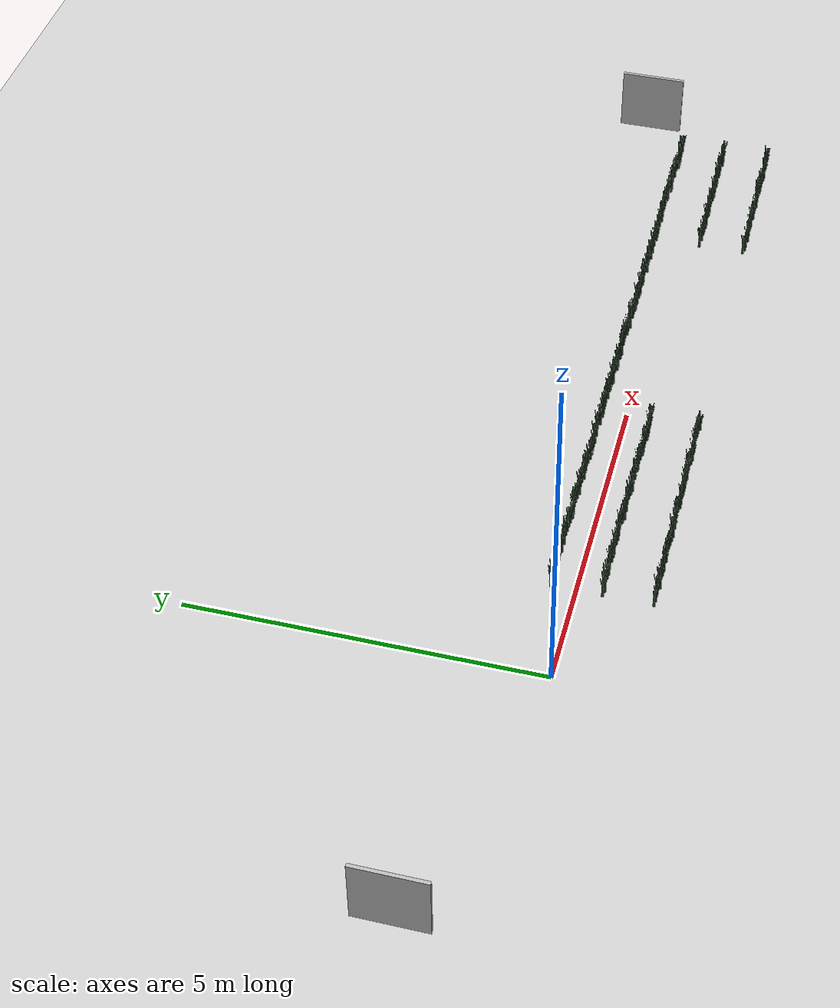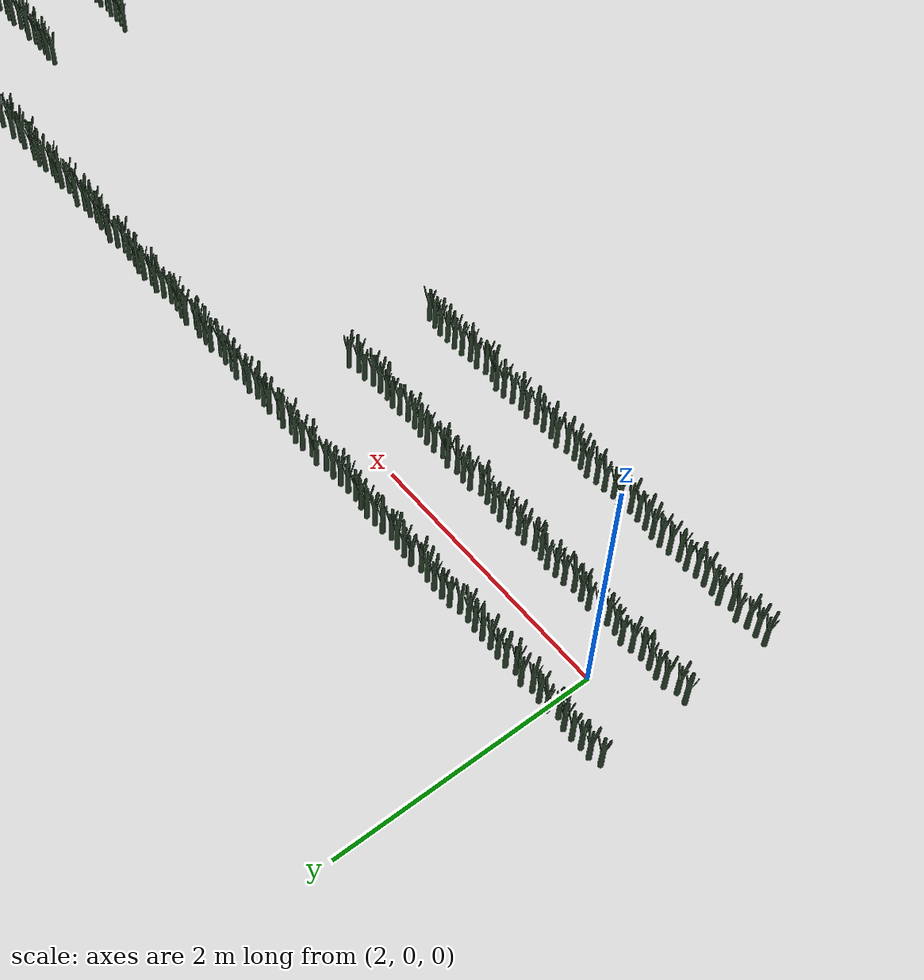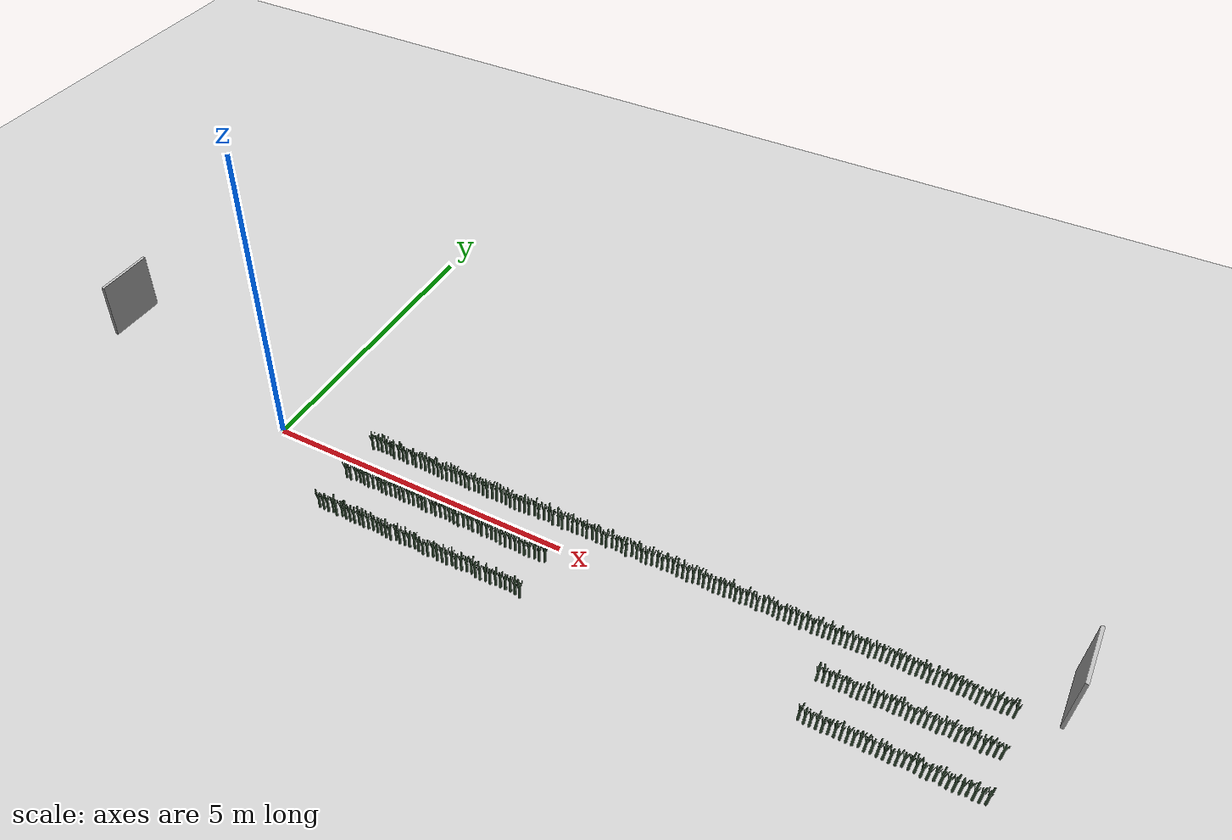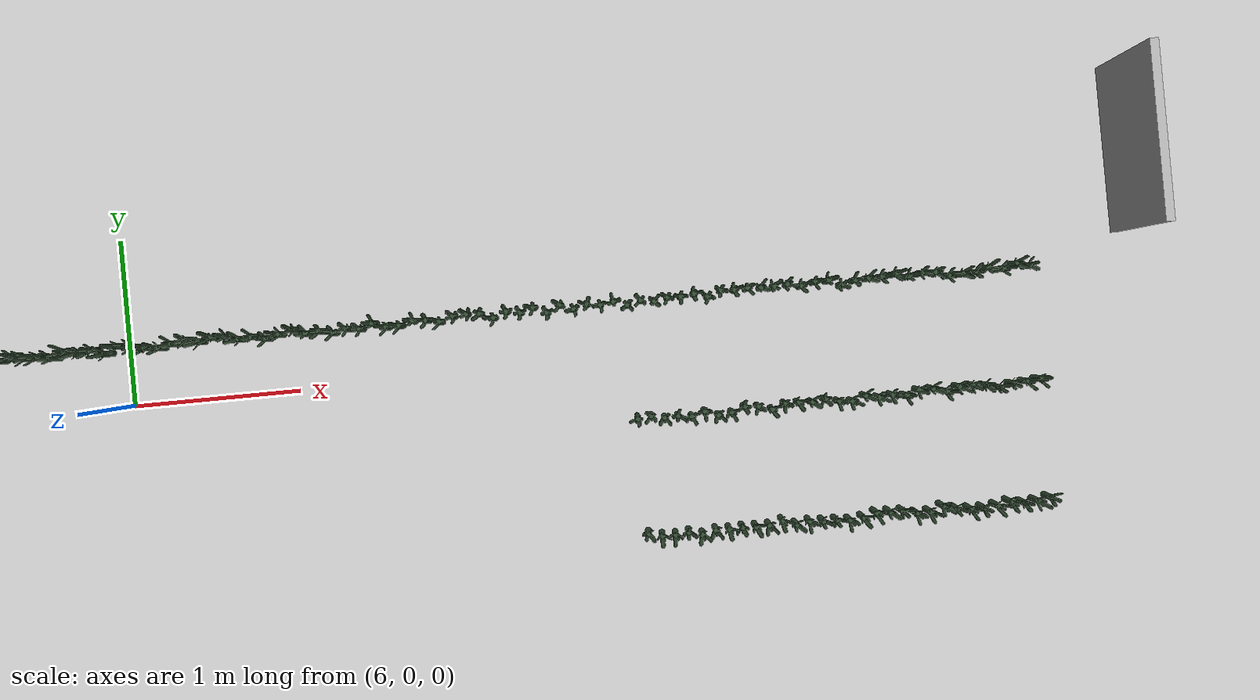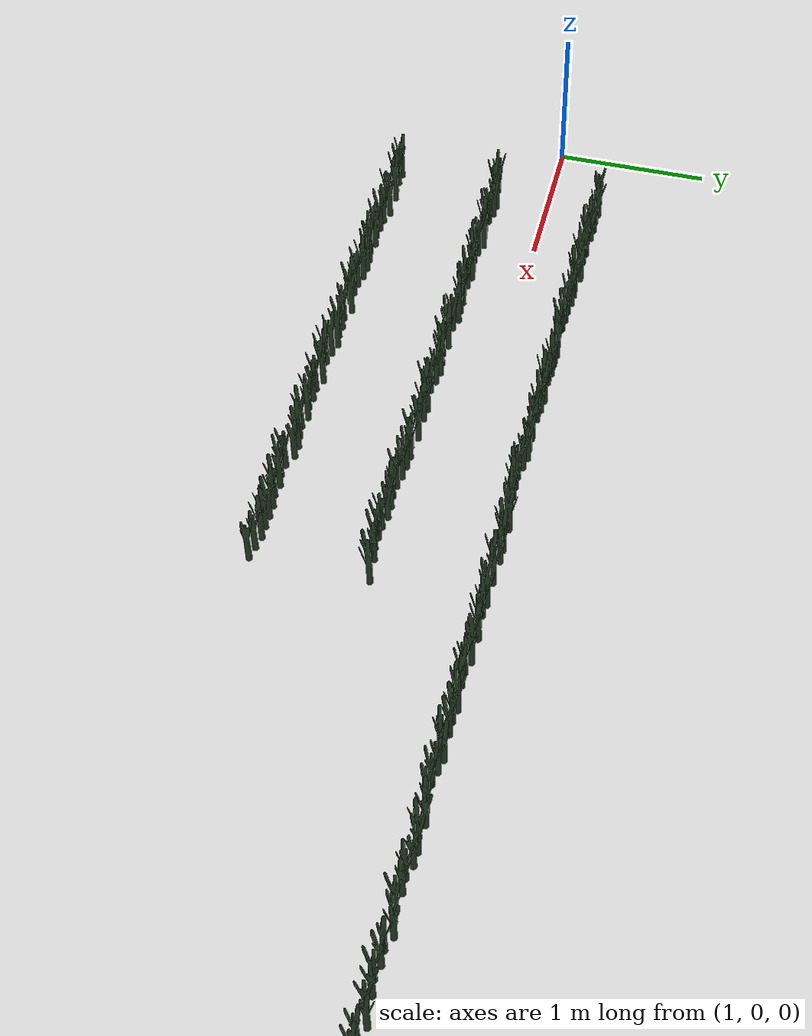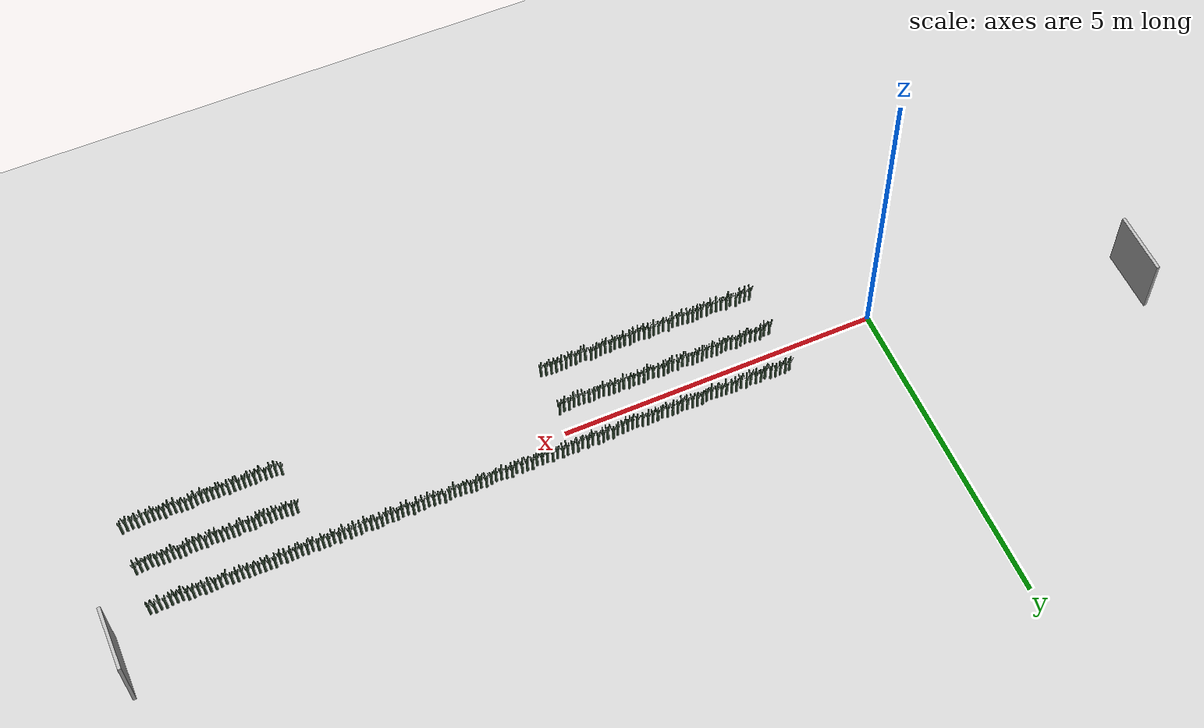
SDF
<sdf version="1.6">
 <world name="default">
  <light name="sun" type="directional">
   <pose>0 0 10 0 -0 0</pose>
   <diffuse>0.5 0.5 0.5 1</diffuse>
   <specular>0.1 0.1 0.1 1</specular>
   <attenuation>
    <range>1000</range>
    <constant>0.9</constant>
    <linear>0.01</linear>
    <quadratic>0.001</quadratic>
   </attenuation>
   <direction>0.9 0.5 -1</direction>
  </light>
  <scene><background>130 200 255 1</background><ambient>130 140 140 1</ambient></scene>
  <include><uri>model://Sign</uri><pose>12 1 0 0 0 0</pose><static>1</static></include>
  <include><uri>model://Sign</uri><pose>-4 1 0 0 0 0</pose><static>1</static></include>
  <include><uri>model://dirt_plane</uri></include>
  <include><uri>model://Leek</uri><pose>1.500000 0.341701 0.15 0 0 -74.691320</pose><static>0</static></include>
  <include><uri>model://Leek</uri><pose>1.580000 0.365852 0.15 0 0 142.672357</pose><static>0</static></include>
  <include><uri>model://Leek</uri><pose>1.660000 0.359936 0.15 0 0 89.421841</pose><static>0</static></include>
  <include><uri>model://Leek</uri><pose>1.740000 0.365455 0.15 0 0 139.092558</pose><static>0</static></include>
  <include><uri>model://Leek</uri><pose>1.820000 0.360886 0.15 0 0 97.974981</pose><static>0</static></include>
  <include>
   <uri>model://Leek</uri>
   <pose>1.900000 0.332071 0.15 0 0 -161.359726</pose>
   <static>0</static>
  </include>
  <include><uri>model://Leek</uri><pose>1.980000 0.359069 0.15 0 0 81.617965</pose><static>0</static></include>
  <include><uri>model://Leek</uri><pose>2.060000 0.353085 0.15 0 0 27.767258</pose><static>0</static></include>
  <include><uri>model://Leek</uri><pose>2.140000 0.339208 0.15 0 0 -97.128318</pose><static>0</static></include>
  <include><uri>model://Leek</uri><pose>2.220000 0.367946 0.15 0 0 161.510518</pose><static>0</static></include>
  <include>
   <uri>model://Leek</uri>
   <pose>2.300000 0.337844 0.15 0 0 -109.403814</pose>
   <static>0</static>
  </include>
  <include><uri>model://Leek</uri><pose>2.380000 0.357543 0.15 0 0 67.890761</pose><static>0</static></include>
  <include><uri>model://Leek</uri><pose>2.460000 0.355726 0.15 0 0 51.538201</pose><static>0</static></include>
  <include><uri>model://Leek</uri><pose>2.540000 0.346333 0.15 0 0 -33.004479</pose><static>0</static></include>
  <include><uri>model://Leek</uri><pose>2.620000 0.348541 0.15 0 0 -13.132439</pose><static>0</static></include>
  <include><uri>model://Leek</uri><pose>2.700000 0.343968 0.15 0 0 -54.283794</pose><static>0</static></include>
  <include>
   <uri>model://Leek</uri>
   <pose>2.780000 0.332337 0.15 0 0 -158.970257</pose>
   <static>0</static>
  </include>
  <include>
   <uri>model://Leek</uri>
   <pose>2.860000 0.335371 0.15 0 0 -131.665470</pose>
   <static>0</static>
  </include>
  <include><uri>model://Leek</uri><pose>2.940000 0.357737 0.15 0 0 69.630370</pose><static>0</static></include>
  <include><uri>model://Leek</uri><pose>3.020000 0.356378 0.15 0 0 57.405529</pose><static>0</static></include>
  <include><uri>model://Leek</uri><pose>3.100000 0.357374 0.15 0 0 66.368719</pose><static>0</static></include>
  <include><uri>model://Leek</uri><pose>3.180000 0.349831 0.15 0 0 -1.517087</pose><static>0</static></include>
  <include>
   <uri>model://Leek</uri>
   <pose>3.260000 0.335701 0.15 0 0 -128.690950</pose>
   <static>0</static>
  </include>
  <include><uri>model://Leek</uri><pose>3.340000 0.359238 0.15 0 0 83.145687</pose><static>0</static></include>
  <include><uri>model://Leek</uri><pose>3.420000 0.353951 0.15 0 0 35.558141</pose><static>0</static></include>
  <include><uri>model://Leek</uri><pose>3.500000 0.348466 0.15 0 0 -13.807327</pose><static>0</static></include>
  <include>
   <uri>model://Leek</uri>
   <pose>3.580000 0.333329 0.15 0 0 -150.037740</pose>
   <static>0</static>
  </include>
  <include><uri>model://Leek</uri><pose>3.660000 0.349231 0.15 0 0 -6.924394</pose><static>0</static></include>
  <include><uri>model://Leek</uri><pose>3.740000 0.350893 0.15 0 0 8.038224</pose><static>0</static></include>
  <include><uri>model://Leek</uri><pose>3.820000 0.358664 0.15 0 0 77.972068</pose><static>0</static></include>
  <include><uri>model://Leek</uri><pose>3.900000 0.345244 0.15 0 0 -42.804745</pose><static>0</static></include>
  <include>
   <uri>model://Leek</uri>
   <pose>3.980000 0.330557 0.15 0 0 -174.986444</pose>
   <static>0</static>
  </include>
  <include>
   <uri>model://Leek</uri>
   <pose>4.060000 0.332980 0.15 0 0 -153.175778</pose>
   <static>0</static>
  </include>
  <include>
   <uri>model://Leek</uri>
   <pose>4.140000 0.336419 0.15 0 0 -122.226580</pose>
   <static>0</static>
  </include>
  <include><uri>model://Leek</uri><pose>4.220000 0.341119 0.15 0 0 -79.925838</pose><static>0</static></include>
  <include><uri>model://Leek</uri><pose>4.300000 0.339610 0.15 0 0 -93.512813</pose><static>0</static></include>
  <include><uri>model://Leek</uri><pose>4.380000 0.366017 0.15 0 0 144.149490</pose><static>0</static></include>
  <include><uri>model://Leek</uri><pose>4.460000 0.343423 0.15 0 0 -59.195740</pose><static>0</static></include>
  <include><uri>model://Leek</uri><pose>4.540000 0.364998 0.15 0 0 134.978887</pose><static>0</static></include>
  <include><uri>model://Leek</uri><pose>4.620000 0.367648 0.15 0 0 158.835557</pose><static>0</static></include>
  <include><uri>model://Leek</uri><pose>4.700000 0.341961 0.15 0 0 -72.352507</pose><static>0</static></include>
  <include><uri>model://Leek</uri><pose>4.780000 0.362099 0.15 0 0 108.893983</pose><static>0</static></include>
  <include>
   <uri>model://Leek</uri>
   <pose>4.860000 0.334732 0.15 0 0 -137.411778</pose>
   <static>0</static>
  </include>
  <include><uri>model://Leek</uri><pose>4.940000 0.363119 0.15 0 0 118.067043</pose><static>0</static></include>
  <include><uri>model://Leek</uri><pose>5.020000 0.353683 0.15 0 0 33.143120</pose><static>0</static></include>
  <include><uri>model://Leek</uri><pose>5.100000 0.349874 0.15 0 0 -1.137750</pose><static>0</static></include>
  <include><uri>model://Leek</uri><pose>5.180000 0.367805 0.15 0 0 160.248814</pose><static>0</static></include>
  <include><uri>model://Leek</uri><pose>5.260000 0.346548 0.15 0 0 -31.065183</pose><static>0</static></include>
  <include><uri>model://Leek</uri><pose>5.340000 0.368612 0.15 0 0 167.503909</pose><static>0</static></include>
  <include><uri>model://Leek</uri><pose>5.420000 0.345981 0.15 0 0 -36.167177</pose><static>0</static></include>
  <include><uri>model://Leek</uri><pose>5.500000 0.351014 0.15 0 0 9.126842</pose><static>0</static></include>
  <include>
   <uri>model://Leek</uri>
   <pose>5.580000 0.333231 0.15 0 0 -150.922011</pose>
   <static>0</static>
  </include>
  <include><uri>model://Leek</uri><pose>5.660000 0.366975 0.15 0 0 152.779346</pose><static>0</static></include>
  <include><uri>model://Leek</uri><pose>5.740000 0.356005 0.15 0 0 54.048158</pose><static>0</static></include>
  <include><uri>model://Leek</uri><pose>5.820000 0.358842 0.15 0 0 79.575840</pose><static>0</static></include>
  <include>
   <uri>model://Leek</uri>
   <pose>5.900000 0.330654 0.15 0 0 -174.115253</pose>
   <static>0</static>
  </include>
  <include><uri>model://Leek</uri><pose>5.980000 0.369181 0.15 0 0 172.627328</pose><static>0</static></include>
  <include><uri>model://Leek</uri><pose>6.060000 0.355728 0.15 0 0 51.553734</pose><static>0</static></include>
  <include><uri>model://Leek</uri><pose>6.140000 0.341896 0.15 0 0 -72.934454</pose><static>0</static></include>
  <include>
   <uri>model://Leek</uri>
   <pose>6.220000 0.335429 0.15 0 0 -131.137921</pose>
   <static>0</static>
  </include>
  <include><uri>model://Leek</uri><pose>6.300000 0.352810 0.15 0 0 25.288137</pose><static>0</static></include>
  <include><uri>model://Leek</uri><pose>6.380000 0.368710 0.15 0 0 168.390964</pose><static>0</static></include>
  <include><uri>model://Leek</uri><pose>6.460000 0.350398 0.15 0 0 3.578119</pose><static>0</static></include>
  <include><uri>model://Leek</uri><pose>6.540000 0.369812 0.15 0 0 178.305823</pose><static>0</static></include>
  <include><uri>model://Leek</uri><pose>6.620000 0.366697 0.15 0 0 150.271853</pose><static>0</static></include>
  <include><uri>model://Leek</uri><pose>6.700000 0.344625 0.15 0 0 -48.376852</pose><static>0</static></include>
  <include><uri>model://Leek</uri><pose>6.780000 0.349322 0.15 0 0 -6.097645</pose><static>0</static></include>
  <include>
   <uri>model://Leek</uri>
   <pose>6.860000 0.332366 0.15 0 0 -158.708917</pose>
   <static>0</static>
  </include>
  <include><uri>model://Leek</uri><pose>6.940000 0.349420 0.15 0 0 -5.220628</pose><static>0</static></include>
  <include><uri>model://Leek</uri><pose>7.020000 0.369442 0.15 0 0 174.981184</pose><static>0</static></include>
  <include><uri>model://Leek</uri><pose>7.100000 0.340917 0.15 0 0 -81.747561</pose><static>0</static></include>
  <include><uri>model://Leek</uri><pose>7.180000 0.346993 0.15 0 0 -27.067328</pose><static>0</static></include>
  <include>
   <uri>model://Leek</uri>
   <pose>7.260000 0.330960 0.15 0 0 -171.355505</pose>
   <static>0</static>
  </include>
  <include><uri>model://Leek</uri><pose>7.340000 0.345671 0.15 0 0 -38.959303</pose><static>0</static></include>
  <include>
   <uri>model://Leek</uri>
   <pose>7.420000 0.337294 0.15 0 0 -114.350345</pose>
   <static>0</static>
  </include>
  <include><uri>model://Leek</uri><pose>7.500000 0.364636 0.15 0 0 131.722241</pose><static>0</static></include>
  <include>
   <uri>model://Leek</uri>
   <pose>7.580000 0.334264 0.15 0 0 -141.626744</pose>
   <static>0</static>
  </include>
  <include>
   <uri>model://Leek</uri>
   <pose>7.660000 0.335656 0.15 0 0 -129.097008</pose>
   <static>0</static>
  </include>
  <include><uri>model://Leek</uri><pose>7.740000 0.356242 0.15 0 0 56.178514</pose><static>0</static></include>
  <include><uri>model://Leek</uri><pose>7.820000 0.351903 0.15 0 0 17.128577</pose><static>0</static></include>
  <include>
   <uri>model://Leek</uri>
   <pose>7.900000 0.336336 0.15 0 0 -122.979396</pose>
   <static>0</static>
  </include>
  <include><uri>model://Leek</uri><pose>7.980000 0.359644 0.15 0 0 86.793557</pose><static>0</static></include>
  <include><uri>model://Leek</uri><pose>8.060000 0.365950 0.15 0 0 143.545505</pose><static>0</static></include>
  <include><uri>model://Leek</uri><pose>8.140000 0.360219 0.15 0 0 91.974477</pose><static>0</static></include>
  <include>
   <uri>model://Leek</uri>
   <pose>8.220000 0.330094 0.15 0 0 -179.157608</pose>
   <static>0</static>
  </include>
  <include><uri>model://Leek</uri><pose>8.300000 0.360308 0.15 0 0 92.776195</pose><static>0</static></include>
  <include><uri>model://Leek</uri><pose>8.380000 0.344957 0.15 0 0 -45.391489</pose><static>0</static></include>
  <include><uri>model://Leek</uri><pose>8.460000 0.369169 0.15 0 0 172.517680</pose><static>0</static></include>
  <include>
   <uri>model://Leek</uri>
   <pose>8.540000 0.330301 0.15 0 0 -177.291713</pose>
   <static>0</static>
  </include>
  <include><uri>model://Leek</uri><pose>8.620000 0.369129 0.15 0 0 172.163208</pose><static>0</static></include>
  <include>
   <uri>model://Leek</uri>
   <pose>8.700000 0.337813 0.15 0 0 -109.680720</pose>
   <static>0</static>
  </include>
  <include><uri>model://Leek</uri><pose>8.780000 0.358499 0.15 0 0 76.493964</pose><static>0</static></include>
  <include><uri>model://Leek</uri><pose>8.860000 0.346873 0.15 0 0 -28.142175</pose><static>0</static></include>
  <include><uri>model://Leek</uri><pose>8.940000 0.359092 0.15 0 0 81.831799</pose><static>0</static></include>
  <include>
   <uri>model://Leek</uri>
   <pose>9.020000 0.330873 0.15 0 0 -172.144826</pose>
   <static>0</static>
  </include>
  <include><uri>model://Leek</uri><pose>9.100000 0.352347 0.15 0 0 21.120960</pose><static>0</static></include>
  <include>
   <uri>model://Leek</uri>
   <pose>9.180000 0.338038 0.15 0 0 -107.657377</pose>
   <static>0</static>
  </include>
  <include><uri>model://Leek</uri><pose>9.260000 0.354479 0.15 0 0 40.314486</pose><static>0</static></include>
  <include><uri>model://Leek</uri><pose>9.340000 0.352422 0.15 0 0 21.800938</pose><static>0</static></include>
  <include><uri>model://Leek</uri><pose>9.420000 0.362396 0.15 0 0 111.560390</pose><static>0</static></include>
  <include>
   <uri>model://Leek</uri>
   <pose>9.500000 0.337029 0.15 0 0 -116.738948</pose>
   <static>0</static>
  </include>
  <include><uri>model://Leek</uri><pose>9.580000 0.368451 0.15 0 0 166.055541</pose><static>0</static></include>
  <include><uri>model://Leek</uri><pose>9.660000 0.363808 0.15 0 0 124.272305</pose><static>0</static></include>
  <include><uri>model://Leek</uri><pose>9.740000 0.365053 0.15 0 0 135.473554</pose><static>0</static></include>
  <include><uri>model://Leek</uri><pose>9.820000 0.361112 0.15 0 0 100.005333</pose><static>0</static></include>
  <include><uri>model://Leek</uri><pose>9.900000 0.360552 0.15 0 0 94.965752</pose><static>0</static></include>
  <include><uri>model://Leek</uri><pose>9.980000 0.366520 0.15 0 0 148.682338</pose><static>0</static></include>
  <include><uri>model://Leek</uri><pose>10.060000 0.349155 0.15 0 0 -7.604056</pose><static>0</static></include>
  <include>
   <uri>model://Leek</uri>
   <pose>10.140000 0.365706 0.15 0 0 141.356253</pose>
   <static>0</static>
  </include>
  <include>
   <uri>model://Leek</uri>
   <pose>10.220000 0.366092 0.15 0 0 144.824814</pose>
   <static>0</static>
  </include>
  <include>
   <uri>model://Leek</uri>
   <pose>10.300000 0.332110 0.15 0 0 -161.014247</pose>
   <static>0</static>
  </include>
  <include><uri>model://Leek</uri><pose>10.380000 0.352284 0.15 0 0 20.559559</pose><static>0</static></include>
  <include><uri>model://Leek</uri><pose>10.460000 0.356916 0.15 0 0 62.244263</pose><static>0</static></include>
  <include><uri>model://Leek</uri><pose>10.540000 0.359604 0.15 0 0 86.431980</pose><static>0</static></include>
  <include>
   <uri>model://Leek</uri>
   <pose>10.620000 0.367312 0.15 0 0 155.812489</pose>
   <static>0</static>
  </include>
  <include>
   <uri>model://Leek</uri>
   <pose>10.700000 0.345144 0.15 0 0 -43.702859</pose>
   <static>0</static>
  </include>
  <include><uri>model://Leek</uri><pose>10.780000 0.358134 0.15 0 0 73.206806</pose><static>0</static></include>
  <include><uri>model://Leek</uri><pose>10.860000 0.355292 0.15 0 0 47.631673</pose><static>0</static></include>
  <include>
   <uri>model://Leek</uri>
   <pose>10.940000 0.330246 0.15 0 0 -177.783495</pose>
   <static>0</static>
  </include>
  <include>
   <uri>model://Leek</uri>
   <pose>11.020000 0.332455 0.15 0 0 -157.908232</pose>
   <static>0</static>
  </include>
  <include>
   <uri>model://Leek</uri>
   <pose>11.100000 0.334113 0.15 0 0 -142.983933</pose>
   <static>0</static>
  </include>
  <include><uri>model://Leek</uri><pose>11.180000 0.355001 0.15 0 0 45.011914</pose><static>0</static></include>
  <include>
   <uri>model://Leek</uri>
   <pose>11.260000 0.340743 0.15 0 0 -83.317378</pose>
   <static>0</static>
  </include>
  <include>
   <uri>model://Leek</uri>
   <pose>11.340000 0.363168 0.15 0 0 118.514872</pose>
   <static>0</static>
  </include>
  <include>
   <uri>model://Leek</uri>
   <pose>11.420000 0.346031 0.15 0 0 -35.720373</pose>
   <static>0</static>
  </include>
  <include>
   <uri>model://Leek</uri>
   <pose>1.500000 -0.358873 0.15 0 0 -79.860757</pose>
   <static>0</static>
  </include>
  <include>
   <uri>model://Leek</uri>
   <pose>1.580000 -0.368524 0.15 0 0 -166.719647</pose>
   <static>0</static>
  </include>
  <include>
   <uri>model://Leek</uri>
   <pose>1.660000 -0.331540 0.15 0 0 166.138412</pose>
   <static>0</static>
  </include>
  <include>
   <uri>model://Leek</uri>
   <pose>1.740000 -0.338027 0.15 0 0 107.753911</pose>
   <static>0</static>
  </include>
  <include>
   <uri>model://Leek</uri>
   <pose>1.820000 -0.352163 0.15 0 0 -19.465429</pose>
   <static>0</static>
  </include>
  <include>
   <uri>model://Leek</uri>
   <pose>1.900000 -0.359518 0.15 0 0 -85.662184</pose>
   <static>0</static>
  </include>
  <include><uri>model://Leek</uri><pose>1.980000 -0.347546 0.15 0 0 22.084955</pose><static>0</static></include>
  <include>
   <uri>model://Leek</uri>
   <pose>2.060000 -0.330420 0.15 0 0 176.223484</pose>
   <static>0</static>
  </include>
  <include>
   <uri>model://Leek</uri>
   <pose>2.140000 -0.352730 0.15 0 0 -24.568966</pose>
   <static>0</static>
  </include>
  <include>
   <uri>model://Leek</uri>
   <pose>2.220000 -0.360256 0.15 0 0 -92.305542</pose>
   <static>0</static>
  </include>
  <include><uri>model://Leek</uri><pose>2.300000 -0.348194 0.15 0 0 16.255346</pose><static>0</static></include>
  <include>
   <uri>model://Leek</uri>
   <pose>2.380000 -0.338171 0.15 0 0 106.462052</pose>
   <static>0</static>
  </include>
  <include><uri>model://Leek</uri><pose>2.460000 -0.348139 0.15 0 0 16.750818</pose><static>0</static></include>
  <include>
   <uri>model://Leek</uri>
   <pose>2.540000 -0.357712 0.15 0 0 -69.406084</pose>
   <static>0</static>
  </include>
  <include><uri>model://Leek</uri><pose>2.620000 -0.339043 0.15 0 0 98.613813</pose><static>0</static></include>
  <include>
   <uri>model://Leek</uri>
   <pose>2.700000 -0.337724 0.15 0 0 110.480475</pose>
   <static>0</static>
  </include>
  <include>
   <uri>model://Leek</uri>
   <pose>2.780000 -0.331149 0.15 0 0 169.657323</pose>
   <static>0</static>
  </include>
  <include><uri>model://Leek</uri><pose>2.860000 -0.349409 0.15 0 0 5.317230</pose><static>0</static></include>
  <include>
   <uri>model://Leek</uri>
   <pose>2.940000 -0.366512 0.15 0 0 -148.607138</pose>
   <static>0</static>
  </include>
  <include><uri>model://Leek</uri><pose>3.020000 -0.339175 0.15 0 0 97.426004</pose><static>0</static></include>
  <include>
   <uri>model://Leek</uri>
   <pose>3.100000 -0.359254 0.15 0 0 -83.289983</pose>
   <static>0</static>
  </include>
  <include><uri>model://Leek</uri><pose>3.180000 -0.344687 0.15 0 0 47.813709</pose><static>0</static></include>
  <include>
   <uri>model://Leek</uri>
   <pose>3.260000 -0.332231 0.15 0 0 159.918390</pose>
   <static>0</static>
  </include>
  <include><uri>model://Leek</uri><pose>3.340000 -0.342182 0.15 0 0 70.357881</pose><static>0</static></include>
  <include>
   <uri>model://Leek</uri>
   <pose>3.420000 -0.357041 0.15 0 0 -63.371560</pose>
   <static>0</static>
  </include>
  <include>
   <uri>model://Leek</uri>
   <pose>3.500000 -0.367823 0.15 0 0 -160.410873</pose>
   <static>0</static>
  </include>
  <include>
   <uri>model://Leek</uri>
   <pose>3.580000 -0.336266 0.15 0 0 123.609387</pose>
   <static>0</static>
  </include>
  <include><uri>model://Leek</uri><pose>3.660000 -0.339868 0.15 0 0 91.187503</pose><static>0</static></include>
  <include>
   <uri>model://Leek</uri>
   <pose>3.740000 -0.354245 0.15 0 0 -38.203233</pose>
   <static>0</static>
  </include>
  <include>
   <uri>model://Leek</uri>
   <pose>3.820000 -0.332819 0.15 0 0 154.626026</pose>
   <static>0</static>
  </include>
  <include>
   <uri>model://Leek</uri>
   <pose>3.900000 -0.359958 0.15 0 0 -89.617552</pose>
   <static>0</static>
  </include>
  <include><uri>model://Leek</uri><pose>3.980000 -0.343015 0.15 0 0 62.867514</pose><static>0</static></include>
  <include><uri>model://Leek</uri><pose>4.060000 -0.344857 0.15 0 0 46.291032</pose><static>0</static></include>
  <include>
   <uri>model://Leek</uri>
   <pose>4.140000 -0.351147 0.15 0 0 -10.319240</pose>
   <static>0</static>
  </include>
  <include>
   <uri>model://Leek</uri>
   <pose>4.220000 -0.364838 0.15 0 0 -133.540974</pose>
   <static>0</static>
  </include>
  <include>
   <uri>model://Leek</uri>
   <pose>4.300000 -0.368127 0.15 0 0 -163.139424</pose>
   <static>0</static>
  </include>
  <include>
   <uri>model://Leek</uri>
   <pose>4.380000 -0.356887 0.15 0 0 -61.985877</pose>
   <static>0</static>
  </include>
  <include>
   <uri>model://Leek</uri>
   <pose>4.460000 -0.354797 0.15 0 0 -43.170838</pose>
   <static>0</static>
  </include>
  <include>
   <uri>model://Leek</uri>
   <pose>4.540000 -0.369659 0.15 0 0 -176.933122</pose>
   <static>0</static>
  </include>
  <include>
   <uri>model://Leek</uri>
   <pose>4.620000 -0.369029 0.15 0 0 -171.263664</pose>
   <static>0</static>
  </include>
  <include>
   <uri>model://Leek</uri>
   <pose>4.700000 -0.369057 0.15 0 0 -171.509045</pose>
   <static>0</static>
  </include>
  <include>
   <uri>model://Leek</uri>
   <pose>4.780000 -0.351391 0.15 0 0 -12.519129</pose>
   <static>0</static>
  </include>
  <include>
   <uri>model://Leek</uri>
   <pose>4.860000 -0.360017 0.15 0 0 -90.156071</pose>
   <static>0</static>
  </include>
  <include>
   <uri>model://Leek</uri>
   <pose>4.940000 -0.333561 0.15 0 0 147.948235</pose>
   <static>0</static>
  </include>
  <include><uri>model://Leek</uri><pose>9.020000 -0.347723 0.15 0 0 20.495159</pose><static>0</static></include>
  <include>
   <uri>model://Leek</uri>
   <pose>9.100000 -0.337882 0.15 0 0 109.064369</pose>
   <static>0</static>
  </include>
  <include>
   <uri>model://Leek</uri>
   <pose>9.180000 -0.355861 0.15 0 0 -52.752072</pose>
   <static>0</static>
  </include>
  <include>
   <uri>model://Leek</uri>
   <pose>9.260000 -0.352128 0.15 0 0 -19.153398</pose>
   <static>0</static>
  </include>
  <include>
   <uri>model://Leek</uri>
   <pose>9.340000 -0.361475 0.15 0 0 -103.271480</pose>
   <static>0</static>
  </include>
  <include><uri>model://Leek</uri><pose>9.420000 -0.340585 0.15 0 0 84.731971</pose><static>0</static></include>
  <include>
   <uri>model://Leek</uri>
   <pose>9.500000 -0.369808 0.15 0 0 -178.270480</pose>
   <static>0</static>
  </include>
  <include>
   <uri>model://Leek</uri>
   <pose>9.580000 -0.361487 0.15 0 0 -103.378898</pose>
   <static>0</static>
  </include>
  <include>
   <uri>model://Leek</uri>
   <pose>9.660000 -0.334458 0.15 0 0 139.882269</pose>
   <static>0</static>
  </include>
  <include><uri>model://Leek</uri><pose>9.740000 -0.340656 0.15 0 0 84.095029</pose><static>0</static></include>
  <include>
   <uri>model://Leek</uri>
   <pose>9.820000 -0.364790 0.15 0 0 -133.114418</pose>
   <static>0</static>
  </include>
  <include>
   <uri>model://Leek</uri>
   <pose>9.900000 -0.337835 0.15 0 0 109.485783</pose>
   <static>0</static>
  </include>
  <include><uri>model://Leek</uri><pose>9.980000 -0.338973 0.15 0 0 99.240968</pose><static>0</static></include>
  <include>
   <uri>model://Leek</uri>
   <pose>10.060000 -0.344490 0.15 0 0 49.586712</pose>
   <static>0</static>
  </include>
  <include>
   <uri>model://Leek</uri>
   <pose>10.140000 -0.334423 0.15 0 0 140.195206</pose>
   <static>0</static>
  </include>
  <include>
   <uri>model://Leek</uri>
   <pose>10.220000 -0.354569 0.15 0 0 -41.118712</pose>
   <static>0</static>
  </include>
  <include>
   <uri>model://Leek</uri>
   <pose>10.300000 -0.360703 0.15 0 0 -96.323314</pose>
   <static>0</static>
  </include>
  <include>
   <uri>model://Leek</uri>
   <pose>10.380000 -0.336090 0.15 0 0 125.191846</pose>
   <static>0</static>
  </include>
  <include>
   <uri>model://Leek</uri>
   <pose>10.460000 -0.352328 0.15 0 0 -20.956373</pose>
   <static>0</static>
  </include>
  <include>
   <uri>model://Leek</uri>
   <pose>10.540000 -0.346020 0.15 0 0 35.819869</pose>
   <static>0</static>
  </include>
  <include>
   <uri>model://Leek</uri>
   <pose>10.620000 -0.355943 0.15 0 0 -53.485934</pose>
   <static>0</static>
  </include>
  <include>
   <uri>model://Leek</uri>
   <pose>10.700000 -0.331564 0.15 0 0 165.923297</pose>
   <static>0</static>
  </include>
  <include>
   <uri>model://Leek</uri>
   <pose>10.780000 -0.330509 0.15 0 0 175.415325</pose>
   <static>0</static>
  </include>
  <include>
   <uri>model://Leek</uri>
   <pose>10.860000 -0.354372 0.15 0 0 -39.346389</pose>
   <static>0</static>
  </include>
  <include>
   <uri>model://Leek</uri>
   <pose>10.940000 -0.333493 0.15 0 0 148.562073</pose>
   <static>0</static>
  </include>
  <include>
   <uri>model://Leek</uri>
   <pose>11.020000 -0.332280 0.15 0 0 159.479613</pose>
   <static>0</static>
  </include>
  <include>
   <uri>model://Leek</uri>
   <pose>11.100000 -0.340009 0.15 0 0 89.917497</pose>
   <static>0</static>
  </include>
  <include>
   <uri>model://Leek</uri>
   <pose>11.180000 -0.361817 0.15 0 0 -106.349064</pose>
   <static>0</static>
  </include>
  <include>
   <uri>model://Leek</uri>
   <pose>11.260000 -0.342936 0.15 0 0 63.572688</pose>
   <static>0</static>
  </include>
  <include>
   <uri>model://Leek</uri>
   <pose>11.340000 -0.338457 0.15 0 0 103.883639</pose>
   <static>0</static>
  </include>
  <include>
   <uri>model://Leek</uri>
   <pose>11.420000 -0.330101 0.15 0 0 179.094892</pose>
   <static>0</static>
  </include>
  <include>
   <uri>model://Leek</uri>
   <pose>1.500000 -1.051753 0.15 0 0 -15.774018</pose>
   <static>0</static>
  </include>
  <include>
   <uri>model://Leek</uri>
   <pose>1.580000 -1.053694 0.15 0 0 -33.250079</pose>
   <static>0</static>
  </include>
  <include>
   <uri>model://Leek</uri>
   <pose>1.660000 -1.054556 0.15 0 0 -41.002093</pose>
   <static>0</static>
  </include>
  <include>
   <uri>model://Leek</uri>
   <pose>1.740000 -1.033959 0.15 0 0 144.373034</pose>
   <static>0</static>
  </include>
  <include>
   <uri>model://Leek</uri>
   <pose>1.820000 -1.069670 0.15 0 0 -177.026753</pose>
   <static>0</static>
  </include>
  <include>
   <uri>model://Leek</uri>
   <pose>1.900000 -1.032796 0.15 0 0 154.840036</pose>
   <static>0</static>
  </include>
  <include>
   <uri>model://Leek</uri>
   <pose>1.980000 -1.055539 0.15 0 0 -49.854259</pose>
   <static>0</static>
  </include>
  <include>
   <uri>model://Leek</uri>
   <pose>2.060000 -1.058586 0.15 0 0 -77.275720</pose>
   <static>0</static>
  </include>
  <include>
   <uri>model://Leek</uri>
   <pose>2.140000 -1.062719 0.15 0 0 -114.469466</pose>
   <static>0</static>
  </include>
  <include><uri>model://Leek</uri><pose>2.220000 -1.049222 0.15 0 0 7.000916</pose><static>0</static></include>
  <include>
   <uri>model://Leek</uri>
   <pose>2.300000 -1.062354 0.15 0 0 -111.183882</pose>
   <static>0</static>
  </include>
  <include><uri>model://Leek</uri><pose>2.380000 -1.046908 0.15 0 0 27.825061</pose><static>0</static></include>
  <include><uri>model://Leek</uri><pose>2.460000 -1.039934 0.15 0 0 90.591056</pose><static>0</static></include>
  <include><uri>model://Leek</uri><pose>2.540000 -1.043351 0.15 0 0 59.837348</pose><static>0</static></include>
  <include>
   <uri>model://Leek</uri>
   <pose>2.620000 -1.057846 0.15 0 0 -70.618083</pose>
   <static>0</static>
  </include>
  <include>
   <uri>model://Leek</uri>
   <pose>2.700000 -1.063229 0.15 0 0 -119.062118</pose>
   <static>0</static>
  </include>
  <include>
   <uri>model://Leek</uri>
   <pose>2.780000 -1.069743 0.15 0 0 -177.687165</pose>
   <static>0</static>
  </include>
  <include>
   <uri>model://Leek</uri>
   <pose>2.860000 -1.033305 0.15 0 0 150.257913</pose>
   <static>0</static>
  </include>
  <include>
   <uri>model://Leek</uri>
   <pose>2.940000 -1.063847 0.15 0 0 -124.624781</pose>
   <static>0</static>
  </include>
  <include>
   <uri>model://Leek</uri>
   <pose>3.020000 -1.052103 0.15 0 0 -18.928824</pose>
   <static>0</static>
  </include>
  <include><uri>model://Leek</uri><pose>3.100000 -1.050896 0.15 0 0 -8.067864</pose><static>0</static></include>
  <include>
   <uri>model://Leek</uri>
   <pose>3.180000 -1.035479 0.15 0 0 130.690583</pose>
   <static>0</static>
  </include>
  <include>
   <uri>model://Leek</uri>
   <pose>3.260000 -1.051766 0.15 0 0 -15.897490</pose>
   <static>0</static>
  </include>
  <include>
   <uri>model://Leek</uri>
   <pose>3.340000 -1.064996 0.15 0 0 -134.966751</pose>
   <static>0</static>
  </include>
  <include>
   <uri>model://Leek</uri>
   <pose>3.420000 -1.064819 0.15 0 0 -133.370431</pose>
   <static>0</static>
  </include>
  <include>
   <uri>model://Leek</uri>
   <pose>3.500000 -1.038333 0.15 0 0 105.003832</pose>
   <static>0</static>
  </include>
  <include>
   <uri>model://Leek</uri>
   <pose>3.580000 -1.062708 0.15 0 0 -114.376137</pose>
   <static>0</static>
  </include>
  <include>
   <uri>model://Leek</uri>
   <pose>3.660000 -1.057721 0.15 0 0 -69.491994</pose>
   <static>0</static>
  </include>
  <include>
   <uri>model://Leek</uri>
   <pose>3.740000 -1.063355 0.15 0 0 -120.198991</pose>
   <static>0</static>
  </include>
  <include><uri>model://Leek</uri><pose>3.820000 -1.042982 0.15 0 0 63.159024</pose><static>0</static></include>
  <include>
   <uri>model://Leek</uri>
   <pose>3.900000 -1.061441 0.15 0 0 -102.966925</pose>
   <static>0</static>
  </include>
  <include><uri>model://Leek</uri><pose>3.980000 -1.049268 0.15 0 0 6.590589</pose><static>0</static></include>
  <include>
   <uri>model://Leek</uri>
   <pose>4.060000 -1.032798 0.15 0 0 154.815658</pose>
   <static>0</static>
  </include>
  <include>
   <uri>model://Leek</uri>
   <pose>4.140000 -1.032588 0.15 0 0 156.712399</pose>
   <static>0</static>
  </include>
  <include>
   <uri>model://Leek</uri>
   <pose>4.220000 -1.065522 0.15 0 0 -139.699937</pose>
   <static>0</static>
  </include>
  <include>
   <uri>model://Leek</uri>
   <pose>4.300000 -1.069971 0.15 0 0 -179.742984</pose>
   <static>0</static>
  </include>
  <include><uri>model://Leek</uri><pose>4.380000 -1.050698 0.15 0 0 -6.278629</pose><static>0</static></include>
  <include>
   <uri>model://Leek</uri>
   <pose>4.460000 -1.060052 0.15 0 0 -90.470562</pose>
   <static>0</static>
  </include>
  <include><uri>model://Leek</uri><pose>4.540000 -1.044920 0.15 0 0 45.716753</pose><static>0</static></include>
  <include><uri>model://Leek</uri><pose>4.620000 -1.042556 0.15 0 0 66.991680</pose><static>0</static></include>
  <include><uri>model://Leek</uri><pose>4.700000 -1.042612 0.15 0 0 66.489709</pose><static>0</static></include>
  <include><uri>model://Leek</uri><pose>4.780000 -1.039145 0.15 0 0 97.696926</pose><static>0</static></include>
  <include>
   <uri>model://Leek</uri>
   <pose>4.860000 -1.053442 0.15 0 0 -30.976724</pose>
   <static>0</static>
  </include>
  <include>
   <uri>model://Leek</uri>
   <pose>4.940000 -1.067362 0.15 0 0 -156.259067</pose>
   <static>0</static>
  </include>
  <include>
   <uri>model://Leek</uri>
   <pose>9.020000 -1.034012 0.15 0 0 143.889182</pose>
   <static>0</static>
  </include>
  <include>
   <uri>model://Leek</uri>
   <pose>9.100000 -1.053667 0.15 0 0 -32.998545</pose>
   <static>0</static>
  </include>
  <include>
   <uri>model://Leek</uri>
   <pose>9.180000 -1.055267 0.15 0 0 -47.404051</pose>
   <static>0</static>
  </include>
  <include><uri>model://Leek</uri><pose>9.260000 -1.047232 0.15 0 0 24.911935</pose><static>0</static></include>
  <include>
   <uri>model://Leek</uri>
   <pose>9.340000 -1.066988 0.15 0 0 -152.888531</pose>
   <static>0</static>
  </include>
  <include><uri>model://Leek</uri><pose>9.420000 -1.047478 0.15 0 0 22.697456</pose><static>0</static></include>
  <include>
   <uri>model://Leek</uri>
   <pose>9.500000 -1.051558 0.15 0 0 -14.021754</pose>
   <static>0</static>
  </include>
  <include><uri>model://Leek</uri><pose>9.580000 -1.047706 0.15 0 0 20.650282</pose><static>0</static></include>
  <include>
   <uri>model://Leek</uri>
   <pose>9.660000 -1.051519 0.15 0 0 -13.669443</pose>
   <static>0</static>
  </include>
  <include><uri>model://Leek</uri><pose>9.740000 -1.050953 0.15 0 0 -8.575953</pose><static>0</static></include>
  <include>
   <uri>model://Leek</uri>
   <pose>9.820000 -1.030632 0.15 0 0 174.312054</pose>
   <static>0</static>
  </include>
  <include>
   <uri>model://Leek</uri>
   <pose>9.900000 -1.060531 0.15 0 0 -94.778298</pose>
   <static>0</static>
  </include>
  <include><uri>model://Leek</uri><pose>9.980000 -1.049686 0.15 0 0 2.830204</pose><static>0</static></include>
  <include>
   <uri>model://Leek</uri>
   <pose>10.060000 -1.056289 0.15 0 0 -56.598159</pose>
   <static>0</static>
  </include>
  <include>
   <uri>model://Leek</uri>
   <pose>10.140000 -1.056946 0.15 0 0 -62.518021</pose>
   <static>0</static>
  </include>
  <include>
   <uri>model://Leek</uri>
   <pose>10.220000 -1.065054 0.15 0 0 -135.487710</pose>
   <static>0</static>
  </include>
  <include>
   <uri>model://Leek</uri>
   <pose>10.300000 -1.056411 0.15 0 0 -57.702483</pose>
   <static>0</static>
  </include>
  <include>
   <uri>model://Leek</uri>
   <pose>10.380000 -1.035673 0.15 0 0 128.940914</pose>
   <static>0</static>
  </include>
  <include>
   <uri>model://Leek</uri>
   <pose>10.460000 -1.038190 0.15 0 0 106.287015</pose>
   <static>0</static>
  </include>
  <include>
   <uri>model://Leek</uri>
   <pose>10.540000 -1.040168 0.15 0 0 88.486256</pose>
   <static>0</static>
  </include>
  <include>
   <uri>model://Leek</uri>
   <pose>10.620000 -1.060864 0.15 0 0 -97.772189</pose>
   <static>0</static>
  </include>
  <include>
   <uri>model://Leek</uri>
   <pose>10.700000 -1.059278 0.15 0 0 -83.497796</pose>
   <static>0</static>
  </include>
  <include>
   <uri>model://Leek</uri>
   <pose>10.780000 -1.032793 0.15 0 0 154.867078</pose>
   <static>0</static>
  </include>
  <include>
   <uri>model://Leek</uri>
   <pose>10.860000 -1.055587 0.15 0 0 -50.282742</pose>
   <static>0</static>
  </include>
  <include>
   <uri>model://Leek</uri>
   <pose>10.940000 -1.063607 0.15 0 0 -122.460504</pose>
   <static>0</static>
  </include>
  <include>
   <uri>model://Leek</uri>
   <pose>11.020000 -1.065924 0.15 0 0 -143.316496</pose>
   <static>0</static>
  </include>
  <include>
   <uri>model://Leek</uri>
   <pose>11.100000 -1.059237 0.15 0 0 -83.132858</pose>
   <static>0</static>
  </include>
  <include>
   <uri>model://Leek</uri>
   <pose>11.180000 -1.043185 0.15 0 0 61.335041</pose>
   <static>0</static>
  </include>
  <include>
   <uri>model://Leek</uri>
   <pose>11.260000 -1.056806 0.15 0 0 -61.257251</pose>
   <static>0</static>
  </include>
  <include>
   <uri>model://Leek</uri>
   <pose>11.340000 -1.052347 0.15 0 0 -21.119939</pose>
   <static>0</static>
  </include>
  <include>
   <uri>model://Leek</uri>
   <pose>11.420000 -1.039403 0.15 0 0 95.371002</pose>
   <static>0</static>
  </include>
 </world>
</sdf>

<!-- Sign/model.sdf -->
<sdf version='1.6'>
  <model name='Sign'>
    <link name='link'>
      <pose frame=''>0 0 0 0 -0 0</pose>
      <inertial>
        <mass>1</mass>
        <inertia>
          <ixx>0.166667</ixx>
          <ixy>0</ixy>
          <ixz>0</ixz>
          <iyy>0.166667</iyy>
          <iyz>0</iyz>
          <izz>0.166667</izz>
        </inertia>
        <pose frame=''>0 0 0 0 -0 0</pose>
      </inertial>
      <self_collide>0</self_collide>
      <kinematic>0</kinematic>
      <gravity>1</gravity>
      <visual name='visual'>
        <geometry>
          <box>
            <size>1 0.05 1</size>
          </box>
        </geometry>
        <material>
          <script>
            <uri>model://ground_plane/materials/scripts/my_ground_plane.material</uri>
            <uri>model://ground_plane/materials/textures</uri>
            <name>my_ground_plane/NaioLogo</name>
          </script>
        </material>
        <pose frame=''>0 0 0.5 0 -0 1.57</pose>
        <cast_shadows>1</cast_shadows>
        <transparency>0</transparency>
      </visual>
    </link>
    <static>1</static>
    <allow_auto_disable>1</allow_auto_disable>
  </model>
</sdf>

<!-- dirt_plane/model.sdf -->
<sdf version="1.4">
<model name="dirt_plane">
  <static>true</static>
    <link name="link">
      <collision name="collision">
        <geometry>
          <plane>
            <normal>0 0 1</normal>
            <size>100 100</size>
          </plane>
        </geometry>
        <surface>
          <friction>
            <ode>
              <mu>100</mu>
              <mu2>50</mu2>
            </ode>
          </friction>
        </surface>
      </collision>
      <visual name="visual">
        <cast_shadows>false</cast_shadows>
        <geometry>
          <plane>
            <normal>0 0 1</normal>
            <size>100 100</size>
          </plane>
        </geometry>
        <material>
          <script>
            <uri>model://ground_plane/materials/scripts/my_ground_plane.material</uri>
            <uri>model://ground_plane/materials/textures</uri>
            <name>my_ground_plane/Dirt</name>
          </script>
        </material>
      </visual>
    </link>
  </model>
</sdf>

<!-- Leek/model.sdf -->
<sdf version='1.6'>
  <model name='Leek'>
    <link name='link'>
      <pose frame=''>0 0 0 0 -0 0</pose>
      <inertial>
        <mass>1</mass>
        <inertia>
          <ixx>0.145833</ixx>
          <ixy>0</ixy>
          <ixz>0</ixz>
          <iyy>0.145833</iyy>
          <iyz>0</iyz>
          <izz>0.125</izz>
        </inertia>
        <pose frame=''>0 0 0 0 -0 0</pose>
      </inertial>
      <self_collide>0</self_collide>
      <kinematic>0</kinematic>
      <gravity>1</gravity>
      <visual name='visual'>
        <geometry>
          <mesh>
            <uri>model://Leek/Poireau.dae</uri>
            <scale>1 1 1</scale>
          </mesh>
        </geometry>
        <material>
          <script>
            <name>Gazebo/Grey</name>
            <uri>file://media/materials/scripts/gazebo.material</uri>
          </script>
          <ambient>0.3 0.7 0.4 0</ambient>
          <diffuse>0.2 0.3 0.2 0</diffuse>
          <specular>0 0 0 1</specular>
          <emissive>0 0 0 1</emissive>
          <shader type='vertex'>
            <normal_map>__default__</normal_map>
          </shader>
        </material>
        <pose frame=''>0 0 -0.08 0 -0 0</pose>
        <cast_shadows>1</cast_shadows>
        <transparency>0</transparency>
      </visual>
      <collision name='collision'>
        <laser_retro>0</laser_retro>
        <max_contacts>10</max_contacts>
        <pose frame=''>0 0 0 0 -0 0</pose>
        <geometry>
          <cylinder>
            <radius>0.02</radius>
            <length>0.25</length>
          </cylinder>
        </geometry>
        <surface>
          <friction>
            <ode>
              <mu>1</mu>
              <mu2>1</mu2>
              <fdir1>0 0 0</fdir1>
              <slip1>0</slip1>
              <slip2>0</slip2>
            </ode>
            <torsional>
              <coefficient>1</coefficient>
              <patch_radius>0</patch_radius>
              <surface_radius>0</surface_radius>
              <use_patch_radius>1</use_patch_radius>
              <ode>
                <slip>0</slip>
              </ode>
            </torsional>
          </friction>
          <bounce>
            <restitution_coefficient>0</restitution_coefficient>
            <threshold>1e+06</threshold>
          </bounce>
          <contact>
            <collide_without_contact>0</collide_without_contact>
            <collide_without_contact_bitmask>1</collide_without_contact_bitmask>
            <collide_bitmask>1</collide_bitmask>
            <ode>
              <soft_cfm>0</soft_cfm>
              <soft_erp>0.2</soft_erp>
              <kp>1e+13</kp>
              <kd>1</kd>
              <max_vel>0.01</max_vel>
              <min_depth>0</min_depth>
            </ode>
            <bullet>
              <split_impulse>1</split_impulse>
              <split_impulse_penetration_threshold>-0.01</split_impulse_penetration_threshold>
              <soft_cfm>0</soft_cfm>
              <soft_erp>0.2</soft_erp>
              <kp>1e+13</kp>
              <kd>1</kd>
            </bullet>
          </contact>
        </surface>
      </collision>
    </link>
    <static>0</static>
    <allow_auto_disable>1</allow_auto_disable>
  </model>
</sdf>
